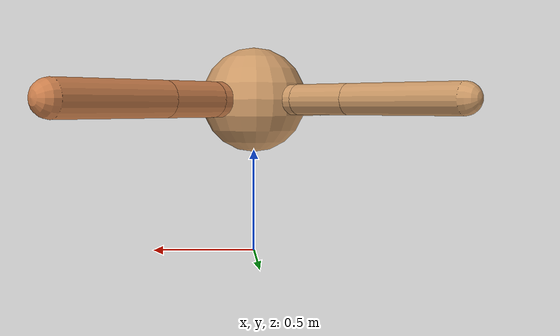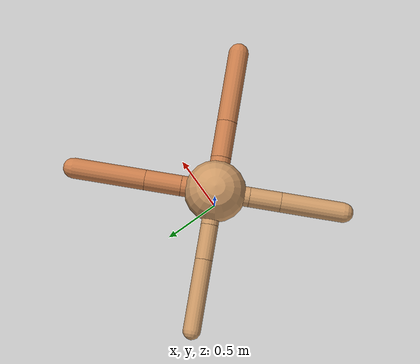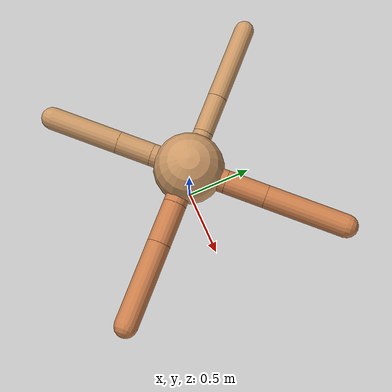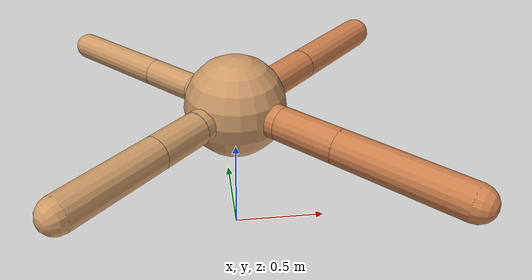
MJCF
<?xml version="1.0" ?>
<mujoco model="ant">

	<compiler angle="degree" coordinate="local" inertiafromgeom="true"/>

	<option integrator="RK4" timestep="0.01"/>

	<custom>

		<numeric data="0.0 0.0 0.55 1.0 0.0 0.0 0.0 0.0 1.0 0.0 -1.0 0.0 -1.0 0.0 1.0" name="init_qpos"/>

	</custom>

	<default>

		<joint armature="1" damping="1" limited="true"/>

		<geom conaffinity="0" condim="3" density="5.0" friction="1.5 0.1 0.1" margin="0.01" rgba="0.8 0.6 0.4 1"/>

	</default>

	<worldbody>

		<body name="torso" pos="0 0 0.75">

			<geom name="torso_geom" pos="0 0 0" size="0.2567717557984523" type="sphere"/>

			<!--joint armature="0" damping="0" limited="false" margin="0.01" name="root" pos="0 0 0" type="free"/-->

			<body name="front_left_leg" pos="0 0 0">

				<geom fromto="0 0 0 0.2 0.2 0" name="aux_1_geom" size="0.08484567002038908" type="capsule" rgba=".8 .5 .3 1"/>

				<body name="aux_1" pos="0.2 0.2 0">

					<joint axis="0 0 1" name="hip_1" pos="0.0 0.0 0.0" range="-40 40" type="hinge"/>

					<geom fromto="0 0 0 0.21258008229401817 0.21258008229401817 0" name="left_leg_geom" size="0.08484567002038908" type="capsule" rgba=".8 .5 .3 1"/>

					<body pos="0.21258008229401817 0.21258008229401817 0" name="front_left_foot">

						<joint axis="-1 1 0" name="ankle_1" pos="0.0 0.0 0.0" range="30 100" type="hinge"/>

						<geom fromto="0 0 0 0.42516016458803635 0.42516016458803635 0" name="left_ankle_geom" size="0.08484567002038908" type="capsule" rgba=".8 .5 .3 1"/>

					</body>

				</body>

			</body>

			<body name="front_right_leg" pos="0 0 0">

				<geom fromto="0 0 0 -0.2 0.2 0" name="aux_2_geom" size="0.07203923959340335" type="capsule"/>

				<body name="aux_2" pos="-0.2 0.2 0">

					<joint axis="0 0 1" name="hip_2" pos="0.0 0.0 0.0" range="-40 40" type="hinge"/>

					<geom fromto="0 0 0 -0.2023295185084713 0.2023295185084713 0" name="right_leg_geom" size="0.07203923959340335" type="capsule"/>

					<body pos="-0.2023295185084713 0.2023295185084713 0" name="front_right_foot">

						<joint axis="1 1 0" name="ankle_2" pos="0.0 0.0 0.0" range="-100 -30" type="hinge"/>

						<geom fromto="0 0 0 -0.4046590370169426 0.4046590370169426 0" name="right_ankle_geom" size="0.07203923959340335" type="capsule"/>

					</body>

				</body>

			</body>

			<body name="left_back_leg" pos="0 0 0">

				<geom fromto="0 0 0 -0.2 -0.2 0" name="aux_3_geom" size="0.08226988743175666" type="capsule"/>

				<body name="aux_3" pos="-0.2 -0.2 0">

					<joint axis="0 0 1" name="hip_3" pos="0.0 0.0 0.0" range="-40 40" type="hinge"/>

					<geom fromto="0 0 0 -0.18267779772662662 -0.18267779772662662 0" name="back_leg_geom" size="0.08226988743175666" type="capsule"/>

					<body pos="-0.18267779772662662 -0.18267779772662662 0" name="left_back_foot">

						<joint axis="-1 1 0" name="ankle_3" pos="0.0 0.0 0.0" range="-100 -30" type="hinge"/>

						<geom fromto="0 0 0 -0.36535559545325325 -0.36535559545325325 0" name="third_ankle_geom" size="0.08226988743175666" type="capsule"/>

					</body>

				</body>

			</body>

			<body name="right_back_leg" pos="0 0 0">

				<geom fromto="0 0 0 0.2 -0.2 0" name="aux_4_geom" size="0.08474697980711808" type="capsule" rgba=".8 .5 .3 1"/>

				<body name="aux_4" pos="0.2 -0.2 0">

					<joint axis="0 0 1" name="hip_4" pos="0.0 0.0 0.0" range="-40 40" type="hinge"/>

					<geom fromto="0 0 0 0.21665468027763854 -0.21665468027763854 0" name="rightback_leg_geom" size="0.08474697980711808" type="capsule" rgba=".8 .5 .3 1"/>

					<body pos="0.21665468027763854 -0.21665468027763854 0" name="right_back_foot">

						<joint axis="1 1 0" name="ankle_4" pos="0.0 0.0 0.0" range="30 100" type="hinge"/>

						<geom fromto="0 0 0 0.4333093605552771 -0.4333093605552771 0" name="fourth_ankle_geom" size="0.08474697980711808" type="capsule" rgba=".8 .5 .3 1"/>

					</body>

				</body>

			</body>

		</body>

	</worldbody>

	<actuator>

		<motor ctrllimited="true" ctrlrange="-1.0 1.0" joint="hip_4" gear="150"/>

		<motor ctrllimited="true" ctrlrange="-1.0 1.0" joint="ankle_4" gear="150"/>

		<motor ctrllimited="true" ctrlrange="-1.0 1.0" joint="hip_1" gear="150"/>

		<motor ctrllimited="true" ctrlrange="-1.0 1.0" joint="ankle_1" gear="150"/>

		<motor ctrllimited="true" ctrlrange="-1.0 1.0" joint="hip_2" gear="150"/>

		<motor ctrllimited="true" ctrlrange="-1.0 1.0" joint="ankle_2" gear="150"/>

		<motor ctrllimited="true" ctrlrange="-1.0 1.0" joint="hip_3" gear="150"/>

		<motor ctrllimited="true" ctrlrange="-1.0 1.0" joint="ankle_3" gear="150"/>

	</actuator>

</mujoco>
